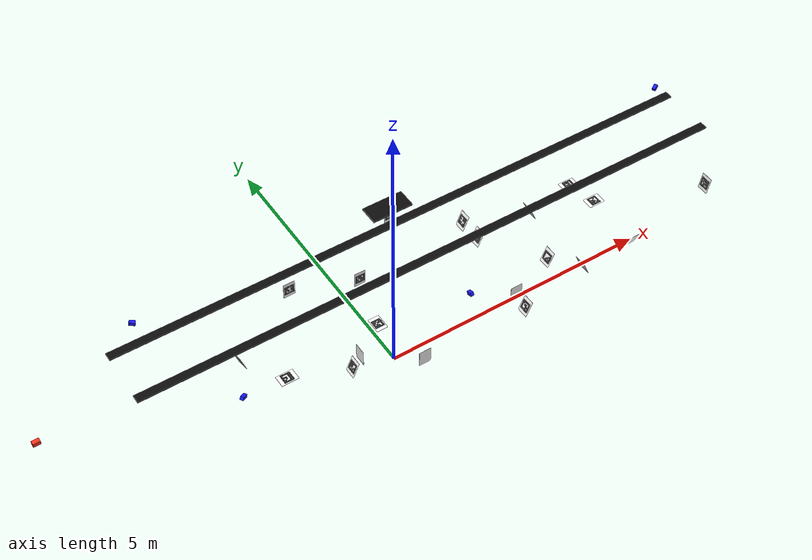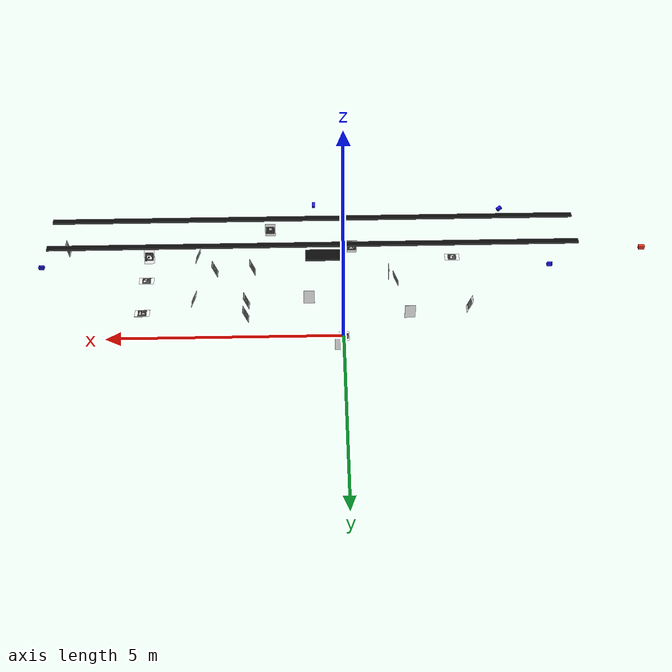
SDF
<sdf version="1.9">
 <world name="bus_real_data_camera_layout">
  <plugin filename="ignition-gazebo-physics-system" name="ignition::gazebo::systems::Physics"/>
  <plugin filename="ignition-gazebo-user-commands-system" name="ignition::gazebo::systems::UserCommands"/>
  <plugin filename="ignition-gazebo-scene-broadcaster-system" name="ignition::gazebo::systems::SceneBroadcaster"/>
  <plugin filename="ignition-gazebo-sensors-system" name="ignition::gazebo::systems::Sensors">
   <render_engine>ogre2</render_engine>
  </plugin>
  <physics name="default_physics" type="ignored">
   <max_step_size>0.01</max_step_size>
   <real_time_factor>1.0</real_time_factor>
  </physics>
  <scene>
   <ambient>0.025000 0.026000 0.032000 1.000000</ambient>
   <background>0.480000 0.520000 0.600000 1.000000</background>
   <shadows>true</shadows>
  </scene>
  <model name="cam_edge_0">
   <static>true</static>
   <pose>0.58780793 -1.23455526 2.48732830 -0.02832886 0.39717862 1.54540010</pose>
   <link name="cam_edge_0_link">
    <visual name="cam_edge_0_visual">
     <geometry><box><size>0.10 0.06 0.06</size></box></geometry>
     <material><ambient>0.1 0.1 1.0 1</ambient><diffuse>0.1 0.1 1.0 1</diffuse></material>
    </visual>
    <sensor name="cam_edge_0_sensor" type="camera">
     <always_on>true</always_on>
     <update_rate>15</update_rate>
     <topic>/bus_real_data/cam_edge_0/image</topic>
     <camera>
      <horizontal_fov>1.2064567910</horizontal_fov>
      <image><width>1280</width><height>720</height><format>R8G8B8</format></image>
      <clip><near>0.05</near><far>100.0</far></clip>
     </camera>
    </sensor>
   </link>
  </model>
  <model name="cam_edge_1">
   <static>true</static>
   <pose>-3.97416732 0.97508650 2.53154268 0.01397153 0.28558128 -0.42471064</pose>
   <link name="cam_edge_1_link">
    <visual name="cam_edge_1_visual">
     <geometry><box><size>0.10 0.06 0.06</size></box></geometry>
     <material><ambient>0.1 0.1 1.0 1</ambient><diffuse>0.1 0.1 1.0 1</diffuse></material>
    </visual>
    <sensor name="cam_edge_1_sensor" type="camera">
     <always_on>true</always_on>
     <update_rate>15</update_rate>
     <topic>/bus_real_data/cam_edge_1/image</topic>
     <camera>
      <horizontal_fov>1.2058954091</horizontal_fov>
      <image><width>1280</width><height>720</height><format>R8G8B8</format></image>
      <clip><near>0.05</near><far>100.0</far></clip>
     </camera>
    </sensor>
   </link>
  </model>
  <model name="cam_edge_3">
   <static>true</static>
   <pose>-3.22735583 -1.06321426 2.45421090 0.03640120 0.33821970 0.53742790</pose>
   <link name="cam_edge_3_link">
    <visual name="cam_edge_3_visual">
     <geometry><box><size>0.10 0.06 0.06</size></box></geometry>
     <material><ambient>0.1 0.1 1.0 1</ambient><diffuse>0.1 0.1 1.0 1</diffuse></material>
    </visual>
    <sensor name="cam_edge_3_sensor" type="camera">
     <always_on>true</always_on>
     <update_rate>15</update_rate>
     <topic>/bus_real_data/cam_edge_3/image</topic>
     <camera>
      <horizontal_fov>1.2156537552</horizontal_fov>
      <image><width>1280</width><height>720</height><format>R8G8B8</format></image>
      <clip><near>0.05</near><far>100.0</far></clip>
     </camera>
    </sensor>
   </link>
  </model>
  <model name="cam_edge_5">
   <static>true</static>
   <pose>5.85885887 0.84841954 2.53876157 0.07529451 0.33545337 -2.70003495</pose>
   <link name="cam_edge_5_link">
    <visual name="cam_edge_5_visual">
     <geometry><box><size>0.10 0.06 0.06</size></box></geometry>
     <material><ambient>0.1 0.1 1.0 1</ambient><diffuse>0.1 0.1 1.0 1</diffuse></material>
    </visual>
    <sensor name="cam_edge_5_sensor" type="camera">
     <always_on>true</always_on>
     <update_rate>15</update_rate>
     <topic>/bus_real_data/cam_edge_5/image</topic>
     <camera>
      <horizontal_fov>1.2083025268</horizontal_fov>
      <image><width>1280</width><height>720</height><format>R8G8B8</format></image>
      <clip><near>0.05</near><far>100.0</far></clip>
     </camera>
    </sensor>
   </link>
  </model>
  <include>
   <uri>model://a4_aruco_marker_000</uri>
   <name>marker_000</name>
   <pose>-2.550000 0.480000 1.180000 -0.40000000 0.00000000 1.57079633</pose>
  </include>
  <include>
   <uri>model://a4_aruco_marker_001</uri>
   <name>marker_001</name>
   <pose>-2.250000 -0.525000 1.630000 -1.57079633 0.00000000 -1.57079633</pose>
  </include>
  <include>
   <uri>model://a4_aruco_marker_002</uri>
   <name>marker_002</name>
   <pose>-1.100000 -0.525000 1.100000 -0.40000000 0.00000000 -1.57079633</pose>
  </include>
  <include>
   <uri>model://a4_aruco_marker_003</uri>
   <name>marker_003</name>
   <pose>0.100000 1.210000 0.800000 0.00000000 0.00000000 0.00000000</pose>
  </include>
  <include>
   <uri>model://a4_aruco_marker_004</uri>
   <name>marker_004</name>
   <pose>0.700000 1.210000 2.000000 0.00000000 0.00000000 0.00000000</pose>
  </include>
  <include>
   <uri>model://a4_aruco_marker_005</uri>
   <name>marker_005</name>
   <pose>1.900000 -0.980000 1.100000 -0.40000000 -0.00000000 -1.57079633</pose>
  </include>
  <include>
   <uri>model://a4_aruco_marker_006</uri>
   <name>marker_006</name>
   <pose>1.970000 0.500000 1.370000 -0.40000000 -0.00000000 -1.57079633</pose>
  </include>
  <include>
   <uri>model://a4_aruco_marker_007</uri>
   <name>marker_007</name>
   <pose>1.970000 0.935000 1.370000 -0.40000000 -0.00000000 -1.57079633</pose>
  </include>
  <include>
   <uri>model://a4_aruco_marker_008</uri>
   <name>marker_008</name>
   <pose>2.650000 -0.525000 1.410000 -0.40000000 -0.00000000 -1.57079633</pose>
  </include>
  <include>
   <uri>model://a4_aruco_marker_009</uri>
   <name>marker_009</name>
   <pose>3.020000 0.480000 1.420000 -0.40000000 0.00000000 1.57079633</pose>
  </include>
  <include>
   <uri>model://a4_aruco_marker_010</uri>
   <name>marker_010</name>
   <pose>3.020000 -0.980000 1.420000 -0.40000000 0.00000000 1.57079633</pose>
  </include>
  <include>
   <uri>model://a4_aruco_marker_011</uri>
   <name>marker_011</name>
   <pose>4.000000 0.000000 1.530000 -1.57079633 0.00000000 1.57079633</pose>
  </include>
  <include>
   <uri>model://a4_aruco_marker_012</uri>
   <name>marker_012</name>
   <pose>4.040000 -0.980000 1.420000 -0.40000000 0.00000000 3.14159265</pose>
  </include>
  <include>
   <uri>model://a4_aruco_marker_013</uri>
   <name>marker_013</name>
   <pose>4.050000 0.730000 1.270000 -1.57079633 0.00000000 1.57079633</pose>
  </include>
  <include>
   <uri>model://a4_aruco_marker_014</uri>
   <name>aruco_ref_floor_14</name>
   <pose>0.000000 0.500000 0.400000 -1.57079633 0.00000000 0.00000000</pose>
  </include>
  <include>
   <uri>model://a4_aruco_marker_016</uri>
   <name>marker_016</name>
   <pose>-0.950000 -0.500000 1.280000 0.00000000 0.00000000 1.57079633</pose>
  </include>
  <include>
   <uri>model://a4_aruco_marker_017</uri>
   <name>marker_017</name>
   <pose>1.500000 -1.200000 1.900000 0.00000000 0.00000000 3.14159265</pose>
  </include>
  <include>
   <uri>model://a4_aruco_marker_018</uri>
   <name>marker_018</name>
   <pose>-0.200000 -1.200000 1.450000 0.00000000 0.00000000 3.14159265</pose>
  </include>
  <include>
   <uri>model://a4_aruco_marker_019</uri>
   <name>marker_019</name>
   <pose>-1.290000 1.090000 1.500000 0.00000000 0.00000000 0.00000000</pose>
  </include>
  <include>
   <uri>model://a4_aruco_marker_020</uri>
   <name>marker_020</name>
   <pose>5.670000 -0.850000 1.750000 -0.20000000 0.00000000 -1.57079633</pose>
  </include>
  <model name="moving_calib_camera">
   <static>true</static>
   <pose>-6.000000 0.000000 2.200000 0.000000 0.000000 0.000000</pose>
   <link name="moving_calib_camera_link">
    <visual name="moving_calib_camera_visual">
     <geometry><box><size>0.12 0.07 0.07</size></box></geometry>
     <material><ambient>1.0 0.2 0.1 1</ambient><diffuse>1.0 0.2 0.1 1</diffuse></material>
    </visual>
    <sensor name="moving_calib_camera_sensor" type="camera">
     <always_on>true</always_on>
     <update_rate>15</update_rate>
     <topic>/bus_real_data/moving_calib_camera/image</topic>
     <camera>
      <horizontal_fov>1.2060225131</horizontal_fov>
      <image><width>1280</width><height>720</height><format>R8G8B8</format></image>
      <clip><near>0.05</near><far>100.0</far></clip>
     </camera>
    </sensor>
   </link>
  </model>
  <model name="bus_ceiling_led_panels">
   <static>true</static>
   <link name="ceiling_led_panel_link">
    <visual name="ceiling_led_strip_0">
     <pose>0.600000 -0.450000 2.700000 0 0 0</pose>
     <geometry><box><size>10.400000 0.140000 0.025000</size></box></geometry>
     <material>
      <ambient>0.045000 0.046000 0.050000 1.000000</ambient>
      <diffuse>0.045000 0.046000 0.050000 1.000000</diffuse>
      <specular>0.100000 0.100000 0.090000 1.000000</specular>
      <emissive>0.045000 0.046000 0.050000 1.000000</emissive>
     </material>
    </visual>
    <visual name="ceiling_led_strip_1">
     <pose>0.600000 0.450000 2.700000 0 0 0</pose>
     <geometry><box><size>10.400000 0.140000 0.025000</size></box></geometry>
     <material>
      <ambient>0.045000 0.046000 0.050000 1.000000</ambient>
      <diffuse>0.045000 0.046000 0.050000 1.000000</diffuse>
      <specular>0.100000 0.100000 0.090000 1.000000</specular>
      <emissive>0.045000 0.046000 0.050000 1.000000</emissive>
     </material>
    </visual>
    <visual name="door_ceiling_led_panel">
     <pose>0.400000 0.800000 2.700000 0 0 0</pose>
     <geometry><box><size>0.720000 0.340000 0.025000</size></box></geometry>
     <material>
      <ambient>0.040500 0.041400 0.045000 1.000000</ambient>
      <diffuse>0.040500 0.041400 0.045000 1.000000</diffuse>
      <specular>0.100000 0.100000 0.090000 1.000000</specular>
      <emissive>0.040500 0.041400 0.045000 1.000000</emissive>
     </material>
    </visual>
   </link>
  </model>
  <light name="ceiling_strip_point_00" type="point">
   <pose>-4.200000 -0.450000 2.610000 0 0 0</pose>
   <cast_shadows>false</cast_shadows>
   <visualize>false</visualize>
   <diffuse>0.035000 0.036000 0.040000 1.000000</diffuse>
   <specular>0.003000 0.003000 0.004000 1.000000</specular>
   <attenuation>
    <range>4.600000</range>
    <constant>0.880000</constant>
    <linear>0.095000</linear>
    <quadratic>0.022000</quadratic>
   </attenuation>
  </light>
  <light name="ceiling_strip_point_01" type="point">
   <pose>-2.600000 -0.450000 2.610000 0 0 0</pose>
   <cast_shadows>false</cast_shadows>
   <visualize>false</visualize>
   <diffuse>0.035000 0.036000 0.040000 1.000000</diffuse>
   <specular>0.003000 0.003000 0.004000 1.000000</specular>
   <attenuation>
    <range>4.600000</range>
    <constant>0.880000</constant>
    <linear>0.095000</linear>
    <quadratic>0.022000</quadratic>
   </attenuation>
  </light>
  <light name="ceiling_strip_point_02" type="point">
   <pose>-1.000000 -0.450000 2.610000 0 0 0</pose>
   <cast_shadows>false</cast_shadows>
   <visualize>false</visualize>
   <diffuse>0.035000 0.036000 0.040000 1.000000</diffuse>
   <specular>0.003000 0.003000 0.004000 1.000000</specular>
   <attenuation>
    <range>4.600000</range>
    <constant>0.880000</constant>
    <linear>0.095000</linear>
    <quadratic>0.022000</quadratic>
   </attenuation>
  </light>
  <light name="ceiling_strip_point_03" type="point">
   <pose>0.600000 -0.450000 2.610000 0 0 0</pose>
   <cast_shadows>false</cast_shadows>
   <visualize>false</visualize>
   <diffuse>0.035000 0.036000 0.040000 1.000000</diffuse>
   <specular>0.003000 0.003000 0.004000 1.000000</specular>
   <attenuation>
    <range>4.600000</range>
    <constant>0.880000</constant>
    <linear>0.095000</linear>
    <quadratic>0.022000</quadratic>
   </attenuation>
  </light>
  <light name="ceiling_strip_point_04" type="point">
   <pose>2.200000 -0.450000 2.610000 0 0 0</pose>
   <cast_shadows>false</cast_shadows>
   <visualize>false</visualize>
   <diffuse>0.035000 0.036000 0.040000 1.000000</diffuse>
   <specular>0.003000 0.003000 0.004000 1.000000</specular>
   <attenuation>
    <range>4.600000</range>
    <constant>0.880000</constant>
    <linear>0.095000</linear>
    <quadratic>0.022000</quadratic>
   </attenuation>
  </light>
  <light name="ceiling_strip_point_05" type="point">
   <pose>3.800000 -0.450000 2.610000 0 0 0</pose>
   <cast_shadows>false</cast_shadows>
   <visualize>false</visualize>
   <diffuse>0.035000 0.036000 0.040000 1.000000</diffuse>
   <specular>0.003000 0.003000 0.004000 1.000000</specular>
   <attenuation>
    <range>4.600000</range>
    <constant>0.880000</constant>
    <linear>0.095000</linear>
    <quadratic>0.022000</quadratic>
   </attenuation>
  </light>
  <light name="ceiling_strip_point_06" type="point">
   <pose>5.400000 -0.450000 2.610000 0 0 0</pose>
   <cast_shadows>false</cast_shadows>
   <visualize>false</visualize>
   <diffuse>0.035000 0.036000 0.040000 1.000000</diffuse>
   <specular>0.003000 0.003000 0.004000 1.000000</specular>
   <attenuation>
    <range>4.600000</range>
    <constant>0.880000</constant>
    <linear>0.095000</linear>
    <quadratic>0.022000</quadratic>
   </attenuation>
  </light>
  <light name="ceiling_strip_point_07" type="point">
   <pose>-4.200000 0.450000 2.610000 0 0 0</pose>
   <cast_shadows>false</cast_shadows>
   <visualize>false</visualize>
   <diffuse>0.035000 0.036000 0.040000 1.000000</diffuse>
   <specular>0.003000 0.003000 0.004000 1.000000</specular>
   <attenuation>
    <range>4.600000</range>
    <constant>0.880000</constant>
    <linear>0.095000</linear>
    <quadratic>0.022000</quadratic>
   </attenuation>
  </light>
  <light name="ceiling_strip_point_08" type="point">
   <pose>-2.600000 0.450000 2.610000 0 0 0</pose>
   <cast_shadows>false</cast_shadows>
   <visualize>false</visualize>
   <diffuse>0.035000 0.036000 0.040000 1.000000</diffuse>
   <specular>0.003000 0.003000 0.004000 1.000000</specular>
   <attenuation>
    <range>4.600000</range>
    <constant>0.880000</constant>
    <linear>0.095000</linear>
    <quadratic>0.022000</quadratic>
   </attenuation>
  </light>
  <light name="ceiling_strip_point_09" type="point">
   <pose>-1.000000 0.450000 2.610000 0 0 0</pose>
   <cast_shadows>false</cast_shadows>
   <visualize>false</visualize>
   <diffuse>0.035000 0.036000 0.040000 1.000000</diffuse>
   <specular>0.003000 0.003000 0.004000 1.000000</specular>
   <attenuation>
    <range>4.600000</range>
    <constant>0.880000</constant>
    <linear>0.095000</linear>
    <quadratic>0.022000</quadratic>
   </attenuation>
  </light>
  <light name="ceiling_strip_point_10" type="point">
   <pose>0.600000 0.450000 2.610000 0 0 0</pose>
   <cast_shadows>false</cast_shadows>
   <visualize>false</visualize>
   <diffuse>0.035000 0.036000 0.040000 1.000000</diffuse>
   <specular>0.003000 0.003000 0.004000 1.000000</specular>
   <attenuation>
    <range>4.600000</range>
    <constant>0.880000</constant>
    <linear>0.095000</linear>
    <quadratic>0.022000</quadratic>
   </attenuation>
  </light>
  <light name="ceiling_strip_point_11" type="point">
   <pose>2.200000 0.450000 2.610000 0 0 0</pose>
   <cast_shadows>false</cast_shadows>
   <visualize>false</visualize>
   <diffuse>0.035000 0.036000 0.040000 1.000000</diffuse>
   <specular>0.003000 0.003000 0.004000 1.000000</specular>
   <attenuation>
    <range>4.600000</range>
    <constant>0.880000</constant>
    <linear>0.095000</linear>
    <quadratic>0.022000</quadratic>
   </attenuation>
  </light>
  <light name="ceiling_strip_point_12" type="point">
   <pose>3.800000 0.450000 2.610000 0 0 0</pose>
   <cast_shadows>false</cast_shadows>
   <visualize>false</visualize>
   <diffuse>0.035000 0.036000 0.040000 1.000000</diffuse>
   <specular>0.003000 0.003000 0.004000 1.000000</specular>
   <attenuation>
    <range>4.600000</range>
    <constant>0.880000</constant>
    <linear>0.095000</linear>
    <quadratic>0.022000</quadratic>
   </attenuation>
  </light>
  <light name="ceiling_strip_point_13" type="point">
   <pose>5.400000 0.450000 2.610000 0 0 0</pose>
   <cast_shadows>false</cast_shadows>
   <visualize>false</visualize>
   <diffuse>0.035000 0.036000 0.040000 1.000000</diffuse>
   <specular>0.003000 0.003000 0.004000 1.000000</specular>
   <attenuation>
    <range>4.600000</range>
    <constant>0.880000</constant>
    <linear>0.095000</linear>
    <quadratic>0.022000</quadratic>
   </attenuation>
  </light>
  <light name="door_ceiling_point" type="point">
   <pose>0.400000 0.800000 2.580000 0 0 0</pose>
   <cast_shadows>false</cast_shadows>
   <visualize>false</visualize>
   <diffuse>0.025200 0.025920 0.028800 1.000000</diffuse>
   <specular>0.001650 0.001650 0.002200 1.000000</specular>
   <attenuation>
    <range>3.200000</range>
    <constant>0.780000</constant>
    <linear>0.105000</linear>
    <quadratic>0.027000</quadratic>
   </attenuation>
  </light>
 </world>
</sdf>

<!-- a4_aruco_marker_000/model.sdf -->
<sdf version="1.9">
  <model name="a4_aruco_marker_000">
    <static>true</static>
    <link name="board_link">

      <visual name="a4_white_sheet">
          <cast_shadows>false</cast_shadows>
        <pose>0 0 0 0 0 0</pose>
        <geometry>
          <box>
            <size>0.210000 0.004 0.297000</size>
          </box>
        </geometry>
        <material>
          <ambient>1 1 1 1</ambient>
          <diffuse>1 1 1 1</diffuse>
            <specular>0 0 0 1</specular>
        </material>
      </visual>

        <visual name="black_cell_0_0">
          <cast_shadows>false</cast_shadows>
          <pose>-0.070833 -0.004000 0.070833 0 0 0</pose>
          <geometry>
            <box>
              <size>0.029467 0.003 0.029467</size>
            </box>
          </geometry>
          <material>
            <ambient>0 0 0 1</ambient>
            <diffuse>0 0 0 1</diffuse>
            <specular>0 0 0 1</specular>
          </material>
        </visual>

        <visual name="black_cell_0_1">
          <cast_shadows>false</cast_shadows>
          <pose>-0.042500 -0.004000 0.070833 0 0 0</pose>
          <geometry>
            <box>
              <size>0.029467 0.003 0.029467</size>
            </box>
          </geometry>
          <material>
            <ambient>0 0 0 1</ambient>
            <diffuse>0 0 0 1</diffuse>
            <specular>0 0 0 1</specular>
          </material>
        </visual>

        <visual name="black_cell_0_2">
          <cast_shadows>false</cast_shadows>
          <pose>-0.014167 -0.004000 0.070833 0 0 0</pose>
          <geometry>
            <box>
              <size>0.029467 0.003 0.029467</size>
            </box>
          </geometry>
          <material>
            <ambient>0 0 0 1</ambient>
            <diffuse>0 0 0 1</diffuse>
            <specular>0 0 0 1</specular>
          </material>
        </visual>

        <visual name="black_cell_0_3">
          <cast_shadows>false</cast_shadows>
          <pose>0.014167 -0.004000 0.070833 0 0 0</pose>
          <geometry>
            <box>
              <size>0.029467 0.003 0.029467</size>
            </box>
          </geometry>
          <material>
            <ambient>0 0 0 1</ambient>
            <diffuse>0 0 0 1</diffuse>
            <specular>0 0 0 1</specular>
          </material>
        </visual>

        <visual name="black_cell_0_4">
          <cast_shadows>false</cast_shadows>
          <pose>0.042500 -0.004000 0.070833 0 0 0</pose>
          <geometry>
            <box>
              <size>0.029467 0.003 0.029467</size>
            </box>
          </geometry>
          <material>
            <ambient>0 0 0 1</ambient>
            <diffuse>0 0 0 1</diffuse>
            <specular>0 0 0 1</specular>
          </material>
        </visual>

        <visual name="black_cell_0_5">
          <cast_shadows>false</cast_shadows>
          <pose>0.070833 -0.004000 0.070833 0 0 0</pose>
          <geometry>
            <box>
              <size>0.029467 0.003 0.029467</size>
            </box>
          </geometry>
          <material>
            <ambient>0 0 0 1</ambient>
            <diffuse>0 0 0 1</diffuse>
            <specular>0 0 0 1</specular>
          </material>
        </visual>

        <visual name="black_cell_1_0">
          <cast_shadows>false</cast_shadows>
          <pose>-0.070833 -0.004000 0.042500 0 0 0</pose>
          <geometry>
            <box>
              <size>0.029467 0.003 0.029467</size>
            </box>
          </geometry>
          <material>
            <ambient>0 0 0 1</ambient>
            <diffuse>0 0 0 1</diffuse>
            <specular>0 0 0 1</specular>
          </material>
        </visual>

        <visual name="black_cell_1_2">
          <cast_shadows>false</cast_shadows>
          <pose>-0.014167 -0.004000 0.042500 0 0 0</pose>
          <geometry>
            <box>
              <size>0.029467 0.003 0.029467</size>
            </box>
          </geometry>
          <material>
            <ambient>0 0 0 1</ambient>
            <diffuse>0 0 0 1</diffuse>
            <specular>0 0 0 1</specular>
          </material>
        </visual>

        <visual name="black_cell_1_5">
          <cast_shadows>false</cast_shadows>
          <pose>0.070833 -0.004000 0.042500 0 0 0</pose>
          <geometry>
            <box>
              <size>0.029467 0.003 0.029467</size>
            </box>
          </geometry>
          <material>
            <ambient>0 0 0 1</ambient>
            <diffuse>0 0 0 1</diffuse>
            <specular>0 0 0 1</specular>
          </material>
        </visual>

        <visual name="black_cell_2_0">
          <cast_shadows>false</cast_shadows>
          <pose>-0.070833 -0.004000 0.014167 0 0 0</pose>
          <geometry>
            <box>
              <size>0.029467 0.003 0.029467</size>
            </box>
          </geometry>
          <material>
            <ambient>0 0 0 1</ambient>
            <diffuse>0 0 0 1</diffuse>
            <specular>0 0 0 1</specular>
          </material>
        </visual>

        <visual name="black_cell_2_1">
          <cast_shadows>false</cast_shadows>
          <pose>-0.042500 -0.004000 0.014167 0 0 0</pose>
          <geometry>
            <box>
              <size>0.029467 0.003 0.029467</size>
            </box>
          </geometry>
          <material>
            <ambient>0 0 0 1</ambient>
            <diffuse>0 0 0 1</diffuse>
            <specular>0 0 0 1</specular>
          </material>
        </visual>

        <visual name="black_cell_2_3">
          <cast_shadows>false</cast_shadows>
          <pose>0.014167 -0.004000 0.014167 0 0 0</pose>
          <geometry>
            <box>
              <size>0.029467 0.003 0.029467</size>
            </box>
          </geometry>
          <material>
            <ambient>0 0 0 1</ambient>
            <diffuse>0 0 0 1</diffuse>
            <specular>0 0 0 1</specular>
          </material>
        </visual>

        <visual name="black_cell_2_5">
          <cast_shadows>false</cast_shadows>
          <pose>0.070833 -0.004000 0.014167 0 0 0</pose>
          <geometry>
            <box>
              <size>0.029467 0.003 0.029467</size>
            </box>
          </geometry>
          <material>
            <ambient>0 0 0 1</ambient>
            <diffuse>0 0 0 1</diffuse>
            <specular>0 0 0 1</specular>
          </material>
        </visual>

        <visual name="black_cell_3_0">
          <cast_shadows>false</cast_shadows>
          <pose>-0.070833 -0.004000 -0.014167 0 0 0</pose>
          <geometry>
            <box>
              <size>0.029467 0.003 0.029467</size>
            </box>
          </geometry>
          <material>
            <ambient>0 0 0 1</ambient>
            <diffuse>0 0 0 1</diffuse>
            <specular>0 0 0 1</specular>
          </material>
        </visual>

        <visual name="black_cell_3_1">
          <cast_shadows>false</cast_shadows>
          <pose>-0.042500 -0.004000 -0.014167 0 0 0</pose>
          <geometry>
            <box>
              <size>0.029467 0.003 0.029467</size>
            </box>
          </geometry>
          <material>
            <ambient>0 0 0 1</ambient>
            <diffuse>0 0 0 1</diffuse>
            <specular>0 0 0 1</specular>
          </material>
        </visual>

        <visual name="black_cell_3_2">
          <cast_shadows>false</cast_shadows>
          <pose>-0.014167 -0.004000 -0.014167 0 0 0</pose>
          <geometry>
            <box>
              <size>0.029467 0.003 0.029467</size>
            </box>
          </geometry>
          <material>
            <ambient>0 0 0 1</ambient>
            <diffuse>0 0 0 1</diffuse>
            <specular>0 0 0 1</specular>
          </material>
        </visual>

        <visual name="black_cell_3_5">
          <cast_shadows>false</cast_shadows>
          <pose>0.070833 -0.004000 -0.014167 0 0 0</pose>
          <geometry>
            <box>
              <size>0.029467 0.003 0.029467</size>
            </box>
          </geometry>
          <material>
            <ambient>0 0 0 1</ambient>
            <diffuse>0 0 0 1</diffuse>
            <specular>0 0 0 1</specular>
          </material>
        </visual>

        <visual name="black_cell_4_0">
          <cast_shadows>false</cast_shadows>
          <pose>-0.070833 -0.004000 -0.042500 0 0 0</pose>
          <geometry>
            <box>
              <size>0.029467 0.003 0.029467</size>
            </box>
          </geometry>
          <material>
            <ambient>0 0 0 1</ambient>
            <diffuse>0 0 0 1</diffuse>
            <specular>0 0 0 1</specular>
          </material>
        </visual>

        <visual name="black_cell_4_1">
          <cast_shadows>false</cast_shadows>
          <pose>-0.042500 -0.004000 -0.042500 0 0 0</pose>
          <geometry>
            <box>
              <size>0.029467 0.003 0.029467</size>
            </box>
          </geometry>
          <material>
            <ambient>0 0 0 1</ambient>
            <diffuse>0 0 0 1</diffuse>
            <specular>0 0 0 1</specular>
          </material>
        </visual>

        <visual name="black_cell_4_2">
          <cast_shadows>false</cast_shadows>
          <pose>-0.014167 -0.004000 -0.042500 0 0 0</pose>
          <geometry>
            <box>
              <size>0.029467 0.003 0.029467</size>
            </box>
          </geometry>
          <material>
            <ambient>0 0 0 1</ambient>
            <diffuse>0 0 0 1</diffuse>
            <specular>0 0 0 1</specular>
          </material>
        </visual>

        <visual name="black_cell_4_4">
          <cast_shadows>false</cast_shadows>
          <pose>0.042500 -0.004000 -0.042500 0 0 0</pose>
          <geometry>
            <box>
              <size>0.029467 0.003 0.029467</size>
            </box>
          </geometry>
          <material>
            <ambient>0 0 0 1</ambient>
            <diffuse>0 0 0 1</diffuse>
            <specular>0 0 0 1</specular>
          </material>
        </visual>

        <visual name="black_cell_4_5">
          <cast_shadows>false</cast_shadows>
          <pose>0.070833 -0.004000 -0.042500 0 0 0</pose>
          <geometry>
            <box>
              <size>0.029467 0.003 0.029467</size>
            </box>
          </geometry>
          <material>
            <ambient>0 0 0 1</ambient>
            <diffuse>0 0 0 1</diffuse>
            <specular>0 0 0 1</specular>
          </material>
        </visual>

        <visual name="black_cell_5_0">
          <cast_shadows>false</cast_shadows>
          <pose>-0.070833 -0.004000 -0.070833 0 0 0</pose>
          <geometry>
            <box>
              <size>0.029467 0.003 0.029467</size>
            </box>
          </geometry>
          <material>
            <ambient>0 0 0 1</ambient>
            <diffuse>0 0 0 1</diffuse>
            <specular>0 0 0 1</specular>
          </material>
        </visual>

        <visual name="black_cell_5_1">
          <cast_shadows>false</cast_shadows>
          <pose>-0.042500 -0.004000 -0.070833 0 0 0</pose>
          <geometry>
            <box>
              <size>0.029467 0.003 0.029467</size>
            </box>
          </geometry>
          <material>
            <ambient>0 0 0 1</ambient>
            <diffuse>0 0 0 1</diffuse>
            <specular>0 0 0 1</specular>
          </material>
        </visual>

        <visual name="black_cell_5_2">
          <cast_shadows>false</cast_shadows>
          <pose>-0.014167 -0.004000 -0.070833 0 0 0</pose>
          <geometry>
            <box>
              <size>0.029467 0.003 0.029467</size>
            </box>
          </geometry>
          <material>
            <ambient>0 0 0 1</ambient>
            <diffuse>0 0 0 1</diffuse>
            <specular>0 0 0 1</specular>
          </material>
        </visual>

        <visual name="black_cell_5_3">
          <cast_shadows>false</cast_shadows>
          <pose>0.014167 -0.004000 -0.070833 0 0 0</pose>
          <geometry>
            <box>
              <size>0.029467 0.003 0.029467</size>
            </box>
          </geometry>
          <material>
            <ambient>0 0 0 1</ambient>
            <diffuse>0 0 0 1</diffuse>
            <specular>0 0 0 1</specular>
          </material>
        </visual>

        <visual name="black_cell_5_4">
          <cast_shadows>false</cast_shadows>
          <pose>0.042500 -0.004000 -0.070833 0 0 0</pose>
          <geometry>
            <box>
              <size>0.029467 0.003 0.029467</size>
            </box>
          </geometry>
          <material>
            <ambient>0 0 0 1</ambient>
            <diffuse>0 0 0 1</diffuse>
            <specular>0 0 0 1</specular>
          </material>
        </visual>

        <visual name="black_cell_5_5">
          <cast_shadows>false</cast_shadows>
          <pose>0.070833 -0.004000 -0.070833 0 0 0</pose>
          <geometry>
            <box>
              <size>0.029467 0.003 0.029467</size>
            </box>
          </geometry>
          <material>
            <ambient>0 0 0 1</ambient>
            <diffuse>0 0 0 1</diffuse>
            <specular>0 0 0 1</specular>
          </material>
        </visual>

    </link>
  </model>
</sdf>

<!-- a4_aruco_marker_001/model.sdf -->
<sdf version="1.9">
  <model name="a4_aruco_marker_001">
    <static>true</static>
    <link name="board_link">

      <visual name="a4_white_sheet">
        <pose>0 0 0 0 0 0</pose>
        <geometry>
          <box>
            <size>0.210000 0.004 0.297000</size>
          </box>
        </geometry>
        <material>
          <ambient>1 1 1 1</ambient>
          <diffuse>1 1 1 1</diffuse>
        </material>
      </visual>

        <visual name="black_cell_0_0">
          <pose>-0.070833 -0.004000 0.070833 0 0 0</pose>
          <geometry>
            <box>
              <size>0.027767 0.003 0.027767</size>
            </box>
          </geometry>
          <material>
            <ambient>0 0 0 1</ambient>
            <diffuse>0 0 0 1</diffuse>
          </material>
        </visual>

        <visual name="black_cell_0_1">
          <pose>-0.042500 -0.004000 0.070833 0 0 0</pose>
          <geometry>
            <box>
              <size>0.027767 0.003 0.027767</size>
            </box>
          </geometry>
          <material>
            <ambient>0 0 0 1</ambient>
            <diffuse>0 0 0 1</diffuse>
          </material>
        </visual>

        <visual name="black_cell_0_2">
          <pose>-0.014167 -0.004000 0.070833 0 0 0</pose>
          <geometry>
            <box>
              <size>0.027767 0.003 0.027767</size>
            </box>
          </geometry>
          <material>
            <ambient>0 0 0 1</ambient>
            <diffuse>0 0 0 1</diffuse>
          </material>
        </visual>

        <visual name="black_cell_0_3">
          <pose>0.014167 -0.004000 0.070833 0 0 0</pose>
          <geometry>
            <box>
              <size>0.027767 0.003 0.027767</size>
            </box>
          </geometry>
          <material>
            <ambient>0 0 0 1</ambient>
            <diffuse>0 0 0 1</diffuse>
          </material>
        </visual>

        <visual name="black_cell_0_4">
          <pose>0.042500 -0.004000 0.070833 0 0 0</pose>
          <geometry>
            <box>
              <size>0.027767 0.003 0.027767</size>
            </box>
          </geometry>
          <material>
            <ambient>0 0 0 1</ambient>
            <diffuse>0 0 0 1</diffuse>
          </material>
        </visual>

        <visual name="black_cell_0_5">
          <pose>0.070833 -0.004000 0.070833 0 0 0</pose>
          <geometry>
            <box>
              <size>0.027767 0.003 0.027767</size>
            </box>
          </geometry>
          <material>
            <ambient>0 0 0 1</ambient>
            <diffuse>0 0 0 1</diffuse>
          </material>
        </visual>

        <visual name="black_cell_1_0">
          <pose>-0.070833 -0.004000 0.042500 0 0 0</pose>
          <geometry>
            <box>
              <size>0.027767 0.003 0.027767</size>
            </box>
          </geometry>
          <material>
            <ambient>0 0 0 1</ambient>
            <diffuse>0 0 0 1</diffuse>
          </material>
        </visual>

        <visual name="black_cell_1_1">
          <pose>-0.042500 -0.004000 0.042500 0 0 0</pose>
          <geometry>
            <box>
              <size>0.027767 0.003 0.027767</size>
            </box>
          </geometry>
          <material>
            <ambient>0 0 0 1</ambient>
            <diffuse>0 0 0 1</diffuse>
          </material>
        </visual>

        <visual name="black_cell_1_2">
          <pose>-0.014167 -0.004000 0.042500 0 0 0</pose>
          <geometry>
            <box>
              <size>0.027767 0.003 0.027767</size>
            </box>
          </geometry>
          <material>
            <ambient>0 0 0 1</ambient>
            <diffuse>0 0 0 1</diffuse>
          </material>
        </visual>

        <visual name="black_cell_1_3">
          <pose>0.014167 -0.004000 0.042500 0 0 0</pose>
          <geometry>
            <box>
              <size>0.027767 0.003 0.027767</size>
            </box>
          </geometry>
          <material>
            <ambient>0 0 0 1</ambient>
            <diffuse>0 0 0 1</diffuse>
          </material>
        </visual>

        <visual name="black_cell_1_4">
          <pose>0.042500 -0.004000 0.042500 0 0 0</pose>
          <geometry>
            <box>
              <size>0.027767 0.003 0.027767</size>
            </box>
          </geometry>
          <material>
            <ambient>0 0 0 1</ambient>
            <diffuse>0 0 0 1</diffuse>
          </material>
        </visual>

        <visual name="black_cell_1_5">
          <pose>0.070833 -0.004000 0.042500 0 0 0</pose>
          <geometry>
            <box>
              <size>0.027767 0.003 0.027767</size>
            </box>
          </geometry>
          <material>
            <ambient>0 0 0 1</ambient>
            <diffuse>0 0 0 1</diffuse>
          </material>
        </visual>

        <visual name="black_cell_2_0">
          <pose>-0.070833 -0.004000 0.014167 0 0 0</pose>
          <geometry>
            <box>
              <size>0.027767 0.003 0.027767</size>
            </box>
          </geometry>
          <material>
            <ambient>0 0 0 1</ambient>
            <diffuse>0 0 0 1</diffuse>
          </material>
        </visual>

        <visual name="black_cell_2_5">
          <pose>0.070833 -0.004000 0.014167 0 0 0</pose>
          <geometry>
            <box>
              <size>0.027767 0.003 0.027767</size>
            </box>
          </geometry>
          <material>
            <ambient>0 0 0 1</ambient>
            <diffuse>0 0 0 1</diffuse>
          </material>
        </visual>

        <visual name="black_cell_3_0">
          <pose>-0.070833 -0.004000 -0.014167 0 0 0</pose>
          <geometry>
            <box>
              <size>0.027767 0.003 0.027767</size>
            </box>
          </geometry>
          <material>
            <ambient>0 0 0 1</ambient>
            <diffuse>0 0 0 1</diffuse>
          </material>
        </visual>

        <visual name="black_cell_3_2">
          <pose>-0.014167 -0.004000 -0.014167 0 0 0</pose>
          <geometry>
            <box>
              <size>0.027767 0.003 0.027767</size>
            </box>
          </geometry>
          <material>
            <ambient>0 0 0 1</ambient>
            <diffuse>0 0 0 1</diffuse>
          </material>
        </visual>

        <visual name="black_cell_3_3">
          <pose>0.014167 -0.004000 -0.014167 0 0 0</pose>
          <geometry>
            <box>
              <size>0.027767 0.003 0.027767</size>
            </box>
          </geometry>
          <material>
            <ambient>0 0 0 1</ambient>
            <diffuse>0 0 0 1</diffuse>
          </material>
        </visual>

        <visual name="black_cell_3_5">
          <pose>0.070833 -0.004000 -0.014167 0 0 0</pose>
          <geometry>
            <box>
              <size>0.027767 0.003 0.027767</size>
            </box>
          </geometry>
          <material>
            <ambient>0 0 0 1</ambient>
            <diffuse>0 0 0 1</diffuse>
          </material>
        </visual>

        <visual name="black_cell_4_0">
          <pose>-0.070833 -0.004000 -0.042500 0 0 0</pose>
          <geometry>
            <box>
              <size>0.027767 0.003 0.027767</size>
            </box>
          </geometry>
          <material>
            <ambient>0 0 0 1</ambient>
            <diffuse>0 0 0 1</diffuse>
          </material>
        </visual>

        <visual name="black_cell_4_2">
          <pose>-0.014167 -0.004000 -0.042500 0 0 0</pose>
          <geometry>
            <box>
              <size>0.027767 0.003 0.027767</size>
            </box>
          </geometry>
          <material>
            <ambient>0 0 0 1</ambient>
            <diffuse>0 0 0 1</diffuse>
          </material>
        </visual>

        <visual name="black_cell_4_4">
          <pose>0.042500 -0.004000 -0.042500 0 0 0</pose>
          <geometry>
            <box>
              <size>0.027767 0.003 0.027767</size>
            </box>
          </geometry>
          <material>
            <ambient>0 0 0 1</ambient>
            <diffuse>0 0 0 1</diffuse>
          </material>
        </visual>

        <visual name="black_cell_4_5">
          <pose>0.070833 -0.004000 -0.042500 0 0 0</pose>
          <geometry>
            <box>
              <size>0.027767 0.003 0.027767</size>
            </box>
          </geometry>
          <material>
            <ambient>0 0 0 1</ambient>
            <diffuse>0 0 0 1</diffuse>
          </material>
        </visual>

        <visual name="black_cell_5_0">
          <pose>-0.070833 -0.004000 -0.070833 0 0 0</pose>
          <geometry>
            <box>
              <size>0.027767 0.003 0.027767</size>
            </box>
          </geometry>
          <material>
            <ambient>0 0 0 1</ambient>
            <diffuse>0 0 0 1</diffuse>
          </material>
        </visual>

        <visual name="black_cell_5_1">
          <pose>-0.042500 -0.004000 -0.070833 0 0 0</pose>
          <geometry>
            <box>
              <size>0.027767 0.003 0.027767</size>
            </box>
          </geometry>
          <material>
            <ambient>0 0 0 1</ambient>
            <diffuse>0 0 0 1</diffuse>
          </material>
        </visual>

        <visual name="black_cell_5_2">
          <pose>-0.014167 -0.004000 -0.070833 0 0 0</pose>
          <geometry>
            <box>
              <size>0.027767 0.003 0.027767</size>
            </box>
          </geometry>
          <material>
            <ambient>0 0 0 1</ambient>
            <diffuse>0 0 0 1</diffuse>
          </material>
        </visual>

        <visual name="black_cell_5_3">
          <pose>0.014167 -0.004000 -0.070833 0 0 0</pose>
          <geometry>
            <box>
              <size>0.027767 0.003 0.027767</size>
            </box>
          </geometry>
          <material>
            <ambient>0 0 0 1</ambient>
            <diffuse>0 0 0 1</diffuse>
          </material>
        </visual>

        <visual name="black_cell_5_4">
          <pose>0.042500 -0.004000 -0.070833 0 0 0</pose>
          <geometry>
            <box>
              <size>0.027767 0.003 0.027767</size>
            </box>
          </geometry>
          <material>
            <ambient>0 0 0 1</ambient>
            <diffuse>0 0 0 1</diffuse>
          </material>
        </visual>

        <visual name="black_cell_5_5">
          <pose>0.070833 -0.004000 -0.070833 0 0 0</pose>
          <geometry>
            <box>
              <size>0.027767 0.003 0.027767</size>
            </box>
          </geometry>
          <material>
            <ambient>0 0 0 1</ambient>
            <diffuse>0 0 0 1</diffuse>
          </material>
        </visual>

    </link>
  </model>
</sdf>

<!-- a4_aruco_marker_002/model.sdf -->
<sdf version="1.9">
  <model name="a4_aruco_marker_002">
    <static>true</static>
    <link name="board_link">

      <visual name="a4_white_sheet">
          <cast_shadows>false</cast_shadows>
        <pose>0 0 0 0 0 0</pose>
        <geometry>
          <box>
            <size>0.210000 0.004 0.297000</size>
          </box>
        </geometry>
        <material>
          <ambient>1 1 1 1</ambient>
          <diffuse>1 1 1 1</diffuse>
            <specular>0 0 0 1</specular>
        </material>
      </visual>

        <visual name="black_cell_0_0">
          <cast_shadows>false</cast_shadows>
          <pose>-0.070833 -0.004000 0.070833 0 0 0</pose>
          <geometry>
            <box>
              <size>0.029467 0.003 0.029467</size>
            </box>
          </geometry>
          <material>
            <ambient>0 0 0 1</ambient>
            <diffuse>0 0 0 1</diffuse>
            <specular>0 0 0 1</specular>
          </material>
        </visual>

        <visual name="black_cell_0_1">
          <cast_shadows>false</cast_shadows>
          <pose>-0.042500 -0.004000 0.070833 0 0 0</pose>
          <geometry>
            <box>
              <size>0.029467 0.003 0.029467</size>
            </box>
          </geometry>
          <material>
            <ambient>0 0 0 1</ambient>
            <diffuse>0 0 0 1</diffuse>
            <specular>0 0 0 1</specular>
          </material>
        </visual>

        <visual name="black_cell_0_2">
          <cast_shadows>false</cast_shadows>
          <pose>-0.014167 -0.004000 0.070833 0 0 0</pose>
          <geometry>
            <box>
              <size>0.029467 0.003 0.029467</size>
            </box>
          </geometry>
          <material>
            <ambient>0 0 0 1</ambient>
            <diffuse>0 0 0 1</diffuse>
            <specular>0 0 0 1</specular>
          </material>
        </visual>

        <visual name="black_cell_0_3">
          <cast_shadows>false</cast_shadows>
          <pose>0.014167 -0.004000 0.070833 0 0 0</pose>
          <geometry>
            <box>
              <size>0.029467 0.003 0.029467</size>
            </box>
          </geometry>
          <material>
            <ambient>0 0 0 1</ambient>
            <diffuse>0 0 0 1</diffuse>
            <specular>0 0 0 1</specular>
          </material>
        </visual>

        <visual name="black_cell_0_4">
          <cast_shadows>false</cast_shadows>
          <pose>0.042500 -0.004000 0.070833 0 0 0</pose>
          <geometry>
            <box>
              <size>0.029467 0.003 0.029467</size>
            </box>
          </geometry>
          <material>
            <ambient>0 0 0 1</ambient>
            <diffuse>0 0 0 1</diffuse>
            <specular>0 0 0 1</specular>
          </material>
        </visual>

        <visual name="black_cell_0_5">
          <cast_shadows>false</cast_shadows>
          <pose>0.070833 -0.004000 0.070833 0 0 0</pose>
          <geometry>
            <box>
              <size>0.029467 0.003 0.029467</size>
            </box>
          </geometry>
          <material>
            <ambient>0 0 0 1</ambient>
            <diffuse>0 0 0 1</diffuse>
            <specular>0 0 0 1</specular>
          </material>
        </visual>

        <visual name="black_cell_1_0">
          <cast_shadows>false</cast_shadows>
          <pose>-0.070833 -0.004000 0.042500 0 0 0</pose>
          <geometry>
            <box>
              <size>0.029467 0.003 0.029467</size>
            </box>
          </geometry>
          <material>
            <ambient>0 0 0 1</ambient>
            <diffuse>0 0 0 1</diffuse>
            <specular>0 0 0 1</specular>
          </material>
        </visual>

        <visual name="black_cell_1_1">
          <cast_shadows>false</cast_shadows>
          <pose>-0.042500 -0.004000 0.042500 0 0 0</pose>
          <geometry>
            <box>
              <size>0.029467 0.003 0.029467</size>
            </box>
          </geometry>
          <material>
            <ambient>0 0 0 1</ambient>
            <diffuse>0 0 0 1</diffuse>
            <specular>0 0 0 1</specular>
          </material>
        </visual>

        <visual name="black_cell_1_2">
          <cast_shadows>false</cast_shadows>
          <pose>-0.014167 -0.004000 0.042500 0 0 0</pose>
          <geometry>
            <box>
              <size>0.029467 0.003 0.029467</size>
            </box>
          </geometry>
          <material>
            <ambient>0 0 0 1</ambient>
            <diffuse>0 0 0 1</diffuse>
            <specular>0 0 0 1</specular>
          </material>
        </visual>

        <visual name="black_cell_1_5">
          <cast_shadows>false</cast_shadows>
          <pose>0.070833 -0.004000 0.042500 0 0 0</pose>
          <geometry>
            <box>
              <size>0.029467 0.003 0.029467</size>
            </box>
          </geometry>
          <material>
            <ambient>0 0 0 1</ambient>
            <diffuse>0 0 0 1</diffuse>
            <specular>0 0 0 1</specular>
          </material>
        </visual>

        <visual name="black_cell_2_0">
          <cast_shadows>false</cast_shadows>
          <pose>-0.070833 -0.004000 0.014167 0 0 0</pose>
          <geometry>
            <box>
              <size>0.029467 0.003 0.029467</size>
            </box>
          </geometry>
          <material>
            <ambient>0 0 0 1</ambient>
            <diffuse>0 0 0 1</diffuse>
            <specular>0 0 0 1</specular>
          </material>
        </visual>

        <visual name="black_cell_2_1">
          <cast_shadows>false</cast_shadows>
          <pose>-0.042500 -0.004000 0.014167 0 0 0</pose>
          <geometry>
            <box>
              <size>0.029467 0.003 0.029467</size>
            </box>
          </geometry>
          <material>
            <ambient>0 0 0 1</ambient>
            <diffuse>0 0 0 1</diffuse>
            <specular>0 0 0 1</specular>
          </material>
        </visual>

        <visual name="black_cell_2_2">
          <cast_shadows>false</cast_shadows>
          <pose>-0.014167 -0.004000 0.014167 0 0 0</pose>
          <geometry>
            <box>
              <size>0.029467 0.003 0.029467</size>
            </box>
          </geometry>
          <material>
            <ambient>0 0 0 1</ambient>
            <diffuse>0 0 0 1</diffuse>
            <specular>0 0 0 1</specular>
          </material>
        </visual>

        <visual name="black_cell_2_5">
          <cast_shadows>false</cast_shadows>
          <pose>0.070833 -0.004000 0.014167 0 0 0</pose>
          <geometry>
            <box>
              <size>0.029467 0.003 0.029467</size>
            </box>
          </geometry>
          <material>
            <ambient>0 0 0 1</ambient>
            <diffuse>0 0 0 1</diffuse>
            <specular>0 0 0 1</specular>
          </material>
        </visual>

        <visual name="black_cell_3_0">
          <cast_shadows>false</cast_shadows>
          <pose>-0.070833 -0.004000 -0.014167 0 0 0</pose>
          <geometry>
            <box>
              <size>0.029467 0.003 0.029467</size>
            </box>
          </geometry>
          <material>
            <ambient>0 0 0 1</ambient>
            <diffuse>0 0 0 1</diffuse>
            <specular>0 0 0 1</specular>
          </material>
        </visual>

        <visual name="black_cell_3_1">
          <cast_shadows>false</cast_shadows>
          <pose>-0.042500 -0.004000 -0.014167 0 0 0</pose>
          <geometry>
            <box>
              <size>0.029467 0.003 0.029467</size>
            </box>
          </geometry>
          <material>
            <ambient>0 0 0 1</ambient>
            <diffuse>0 0 0 1</diffuse>
            <specular>0 0 0 1</specular>
          </material>
        </visual>

        <visual name="black_cell_3_2">
          <cast_shadows>false</cast_shadows>
          <pose>-0.014167 -0.004000 -0.014167 0 0 0</pose>
          <geometry>
            <box>
              <size>0.029467 0.003 0.029467</size>
            </box>
          </geometry>
          <material>
            <ambient>0 0 0 1</ambient>
            <diffuse>0 0 0 1</diffuse>
            <specular>0 0 0 1</specular>
          </material>
        </visual>

        <visual name="black_cell_3_4">
          <cast_shadows>false</cast_shadows>
          <pose>0.042500 -0.004000 -0.014167 0 0 0</pose>
          <geometry>
            <box>
              <size>0.029467 0.003 0.029467</size>
            </box>
          </geometry>
          <material>
            <ambient>0 0 0 1</ambient>
            <diffuse>0 0 0 1</diffuse>
            <specular>0 0 0 1</specular>
          </material>
        </visual>

        <visual name="black_cell_3_5">
          <cast_shadows>false</cast_shadows>
          <pose>0.070833 -0.004000 -0.014167 0 0 0</pose>
          <geometry>
            <box>
              <size>0.029467 0.003 0.029467</size>
            </box>
          </geometry>
          <material>
            <ambient>0 0 0 1</ambient>
            <diffuse>0 0 0 1</diffuse>
            <specular>0 0 0 1</specular>
          </material>
        </visual>

        <visual name="black_cell_4_0">
          <cast_shadows>false</cast_shadows>
          <pose>-0.070833 -0.004000 -0.042500 0 0 0</pose>
          <geometry>
            <box>
              <size>0.029467 0.003 0.029467</size>
            </box>
          </geometry>
          <material>
            <ambient>0 0 0 1</ambient>
            <diffuse>0 0 0 1</diffuse>
            <specular>0 0 0 1</specular>
          </material>
        </visual>

        <visual name="black_cell_4_3">
          <cast_shadows>false</cast_shadows>
          <pose>0.014167 -0.004000 -0.042500 0 0 0</pose>
          <geometry>
            <box>
              <size>0.029467 0.003 0.029467</size>
            </box>
          </geometry>
          <material>
            <ambient>0 0 0 1</ambient>
            <diffuse>0 0 0 1</diffuse>
            <specular>0 0 0 1</specular>
          </material>
        </visual>

        <visual name="black_cell_4_5">
          <cast_shadows>false</cast_shadows>
          <pose>0.070833 -0.004000 -0.042500 0 0 0</pose>
          <geometry>
            <box>
              <size>0.029467 0.003 0.029467</size>
            </box>
          </geometry>
          <material>
            <ambient>0 0 0 1</ambient>
            <diffuse>0 0 0 1</diffuse>
            <specular>0 0 0 1</specular>
          </material>
        </visual>

        <visual name="black_cell_5_0">
          <cast_shadows>false</cast_shadows>
          <pose>-0.070833 -0.004000 -0.070833 0 0 0</pose>
          <geometry>
            <box>
              <size>0.029467 0.003 0.029467</size>
            </box>
          </geometry>
          <material>
            <ambient>0 0 0 1</ambient>
            <diffuse>0 0 0 1</diffuse>
            <specular>0 0 0 1</specular>
          </material>
        </visual>

        <visual name="black_cell_5_1">
          <cast_shadows>false</cast_shadows>
          <pose>-0.042500 -0.004000 -0.070833 0 0 0</pose>
          <geometry>
            <box>
              <size>0.029467 0.003 0.029467</size>
            </box>
          </geometry>
          <material>
            <ambient>0 0 0 1</ambient>
            <diffuse>0 0 0 1</diffuse>
            <specular>0 0 0 1</specular>
          </material>
        </visual>

        <visual name="black_cell_5_2">
          <cast_shadows>false</cast_shadows>
          <pose>-0.014167 -0.004000 -0.070833 0 0 0</pose>
          <geometry>
            <box>
              <size>0.029467 0.003 0.029467</size>
            </box>
          </geometry>
          <material>
            <ambient>0 0 0 1</ambient>
            <diffuse>0 0 0 1</diffuse>
            <specular>0 0 0 1</specular>
          </material>
        </visual>

        <visual name="black_cell_5_3">
          <cast_shadows>false</cast_shadows>
          <pose>0.014167 -0.004000 -0.070833 0 0 0</pose>
          <geometry>
            <box>
              <size>0.029467 0.003 0.029467</size>
            </box>
          </geometry>
          <material>
            <ambient>0 0 0 1</ambient>
            <diffuse>0 0 0 1</diffuse>
            <specular>0 0 0 1</specular>
          </material>
        </visual>

        <visual name="black_cell_5_4">
          <cast_shadows>false</cast_shadows>
          <pose>0.042500 -0.004000 -0.070833 0 0 0</pose>
          <geometry>
            <box>
              <size>0.029467 0.003 0.029467</size>
            </box>
          </geometry>
          <material>
            <ambient>0 0 0 1</ambient>
            <diffuse>0 0 0 1</diffuse>
            <specular>0 0 0 1</specular>
          </material>
        </visual>

        <visual name="black_cell_5_5">
          <cast_shadows>false</cast_shadows>
          <pose>0.070833 -0.004000 -0.070833 0 0 0</pose>
          <geometry>
            <box>
              <size>0.029467 0.003 0.029467</size>
            </box>
          </geometry>
          <material>
            <ambient>0 0 0 1</ambient>
            <diffuse>0 0 0 1</diffuse>
            <specular>0 0 0 1</specular>
          </material>
        </visual>

    </link>
  </model>
</sdf>
